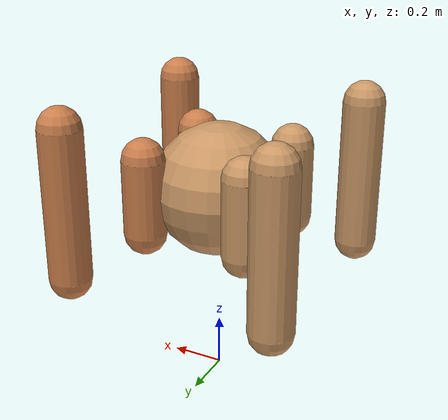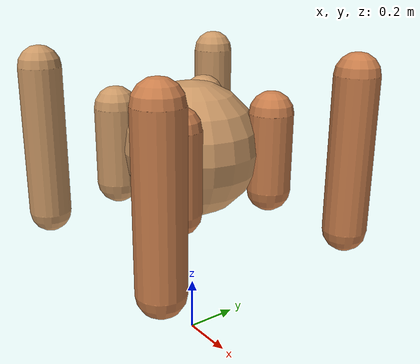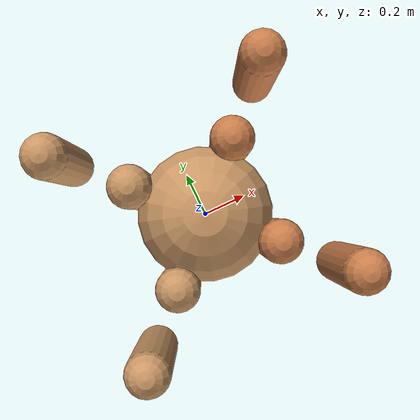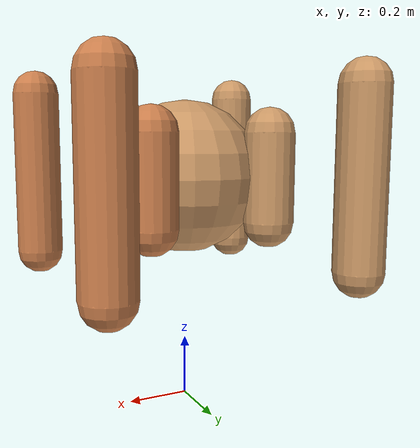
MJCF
<mujoco model="ant">
  <compiler angle="degree" coordinate="local" inertiafromgeom="true"/>
  <option integrator="RK4" timestep="0.01"/>
  <custom>
    <numeric data="0.0 0.0 0.55 1.0 0.0 0.0 0.0 0.0 1.0 0.0 -1.0 0.0 -1.0 0.0 1.0" name="init_qpos"/>
  </custom>
  <default>
    <joint armature="1" damping="1" limited="true"/>
    <geom conaffinity="0" condim="3" density="5.0" friction="1.5 0.1 0.1" margin="0.01" rgba="0.8 0.6 0.4 1"/>
  </default>
  <worldbody>
    <body name="torso" pos="0 0 0.75">
      <geom name="torso_geom" pos="0 0 0" size="0.25" type="sphere"/>
      <!--joint armature="0" damping="0" limited="false" margin="0.01" name="root" pos="0 0 0" type="free"/-->
      <body name="eyes" pos="0 0 0" quat="0 0 0 1" size="0.001">
        <inertial pos="0 0 0" mass="0" diaginertia="0 0 0"/>
      </body>
      <body name="front_left_leg" pos="0 0 0">
        <geom fromto="0 0 -0.14142135623730953 0 0 0.14142135623730953" name="aux_1_geom" size="0.08" type="capsule" rgba=".8 .5 .3 1" quat="0.5 -0.70710678 0 -0.5" pos="0.1 0.1 0"/>
        <body name="aux_1" pos="0.2 0.2 0">
          <joint axis="0 0 1" name="hip_1" pos="0.0 0.0 0.0" range="-40 40" type="hinge"/>
          <geom fromto="0 0 -0.14142135623730953 0 0 0.14142135623730953" name="left_leg_geom" size="0.08" type="capsule" rgba=".8 .5 .3 1" quat="0.5 -0.70710678 0 -0.5" pos="0.1 0.1 0"/>
          <body pos="0.2 0.2 0" name="front_left_foot">
            <joint axis="-1 1 0" name="ankle_1" pos="0.0 0.0 0.0" range="30 100" type="hinge"/>
            <geom fromto="0 0 -0.28284271247461906 0 0 0.28284271247461906" name="left_ankle_geom" size="0.08" type="capsule" rgba=".8 .5 .3 1" quat="0.5 -0.70710678 0 -0.5" pos="0.2 0.2 0"/>
          </body>
        </body>
      </body>
      <body name="front_right_leg" pos="0 0 0">
        <geom fromto="0 0 -0.14142135623730953 0 0 0.14142135623730953" name="aux_2_geom" size="0.08" type="capsule" quat="0.5 0.70710678 0 0.5" pos="-0.1 0.1 0"/>
        <body name="aux_2" pos="-0.2 0.2 0">
          <joint axis="0 0 1" name="hip_2" pos="0.0 0.0 0.0" range="-40 40" type="hinge"/>
          <geom fromto="0 0 -0.14142135623730953 0 0 0.14142135623730953" name="right_leg_geom" size="0.08" type="capsule" quat="0.5 0.70710678 0 0.5" pos="-0.1 0.1 0"/>
          <body pos="-0.2 0.2 0" name="front_right_foot">
            <joint axis="1 1 0" name="ankle_2" pos="0.0 0.0 0.0" range="-100 -30" type="hinge"/>
            <geom fromto="0 0 -0.28284271247461906 0 0 0.28284271247461906" name="right_ankle_geom" size="0.08" type="capsule" quat="0.5 0.70710678 0 0.5" pos="-0.2 0.2 0"/>
          </body>
        </body>
      </body>
      <body name="left_back_leg" pos="0 0 0">
        <geom fromto="0 0 -0.14142135623730953 0 0 0.14142135623730953" name="aux_3_geom" size="0.08" type="capsule" quat="0.5 0.70710678 0 -0.5" pos="-0.1 -0.1 0"/>
        <body name="aux_3" pos="-0.2 -0.2 0">
          <joint axis="0 0 1" name="hip_3" pos="0.0 0.0 0.0" range="-40 40" type="hinge"/>
          <geom fromto="0 0 -0.14142135623730953 0 0 0.14142135623730953" name="back_leg_geom" size="0.08" type="capsule" quat="0.5 0.70710678 0 -0.5" pos="-0.1 -0.1 0"/>
          <body pos="-0.2 -0.2 0" name="left_back_foot">
            <joint axis="-1 1 0" name="ankle_3" pos="0.0 0.0 0.0" range="-100 -30" type="hinge"/>
            <geom fromto="0 0 -0.28284271247461906 0 0 0.28284271247461906" name="third_ankle_geom" size="0.08" type="capsule" quat="0.5 0.70710678 0 -0.5" pos="-0.2 -0.2 0"/>
          </body>
        </body>
      </body>
      <body name="right_back_leg" pos="0 0 0">
        <geom fromto="0 0 -0.14142135623730953 0 0 0.14142135623730953" name="aux_4_geom" size="0.08" type="capsule" rgba=".8 .5 .3 1" quat="0.5 0.70710678 0 0.5" pos="0.1 -0.1 0"/>
        <body name="aux_4" pos="0.2 -0.2 0">
          <joint axis="0 0 1" name="hip_4" pos="0.0 0.0 0.0" range="-40 40" type="hinge"/>
          <geom fromto="0 0 -0.14142135623730953 0 0 0.14142135623730953" name="rightback_leg_geom" size="0.08" type="capsule" rgba=".8 .5 .3 1" quat="0.5 0.70710678 0 0.5" pos="0.1 -0.1 0"/>
          <body pos="0.2 -0.2 0" name="right_back_foot">
            <joint axis="1 1 0" name="ankle_4" pos="0.0 0.0 0.0" range="30 100" type="hinge"/>
            <geom fromto="0 0 -0.28284271247461906 0 0 0.28284271247461906" name="fourth_ankle_geom" size="0.08" type="capsule" rgba=".8 .5 .3 1" quat="0.5 0.70710678 0 0.5" pos="0.2 -0.2 0"/>
          </body>
        </body>
      </body>
    </body>
  </worldbody>
  <actuator>
    <motor ctrllimited="true" ctrlrange="-1.0 1.0" joint="hip_4" gear="150"/>
    <motor ctrllimited="true" ctrlrange="-1.0 1.0" joint="ankle_4" gear="150"/>
    <motor ctrllimited="true" ctrlrange="-1.0 1.0" joint="hip_1" gear="150"/>
    <motor ctrllimited="true" ctrlrange="-1.0 1.0" joint="ankle_1" gear="150"/>
    <motor ctrllimited="true" ctrlrange="-1.0 1.0" joint="hip_2" gear="150"/>
    <motor ctrllimited="true" ctrlrange="-1.0 1.0" joint="ankle_2" gear="150"/>
    <motor ctrllimited="true" ctrlrange="-1.0 1.0" joint="hip_3" gear="150"/>
    <motor ctrllimited="true" ctrlrange="-1.0 1.0" joint="ankle_3" gear="150"/>
  </actuator>
</mujoco>
